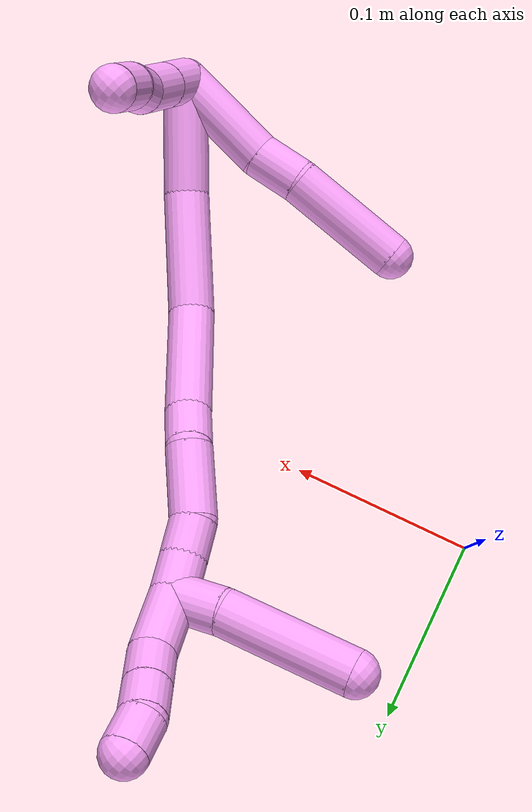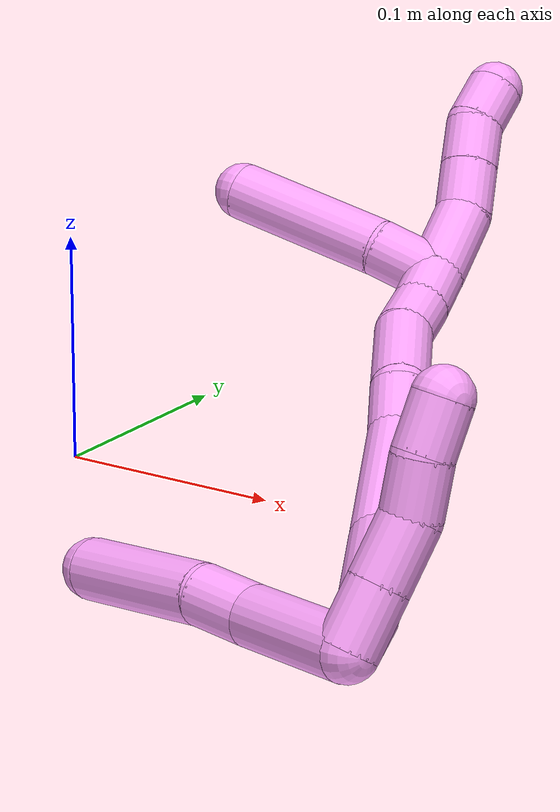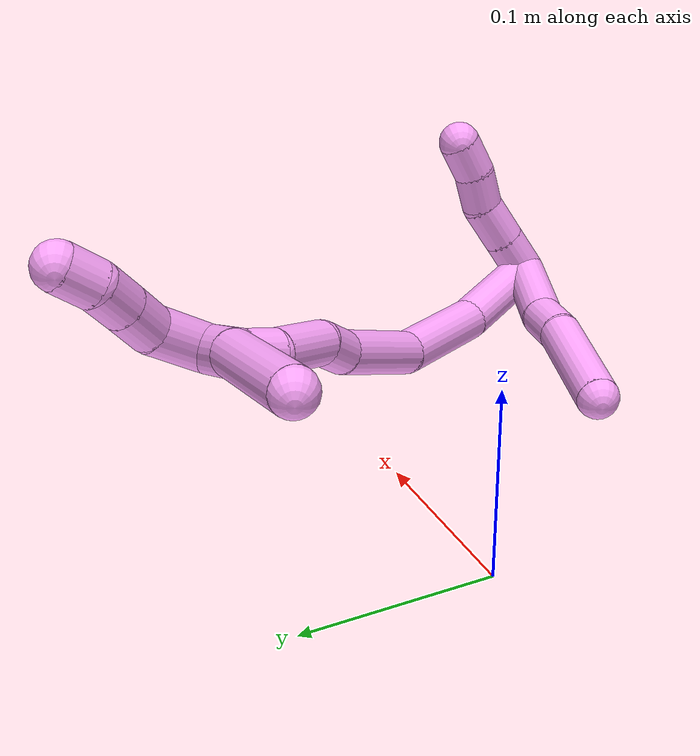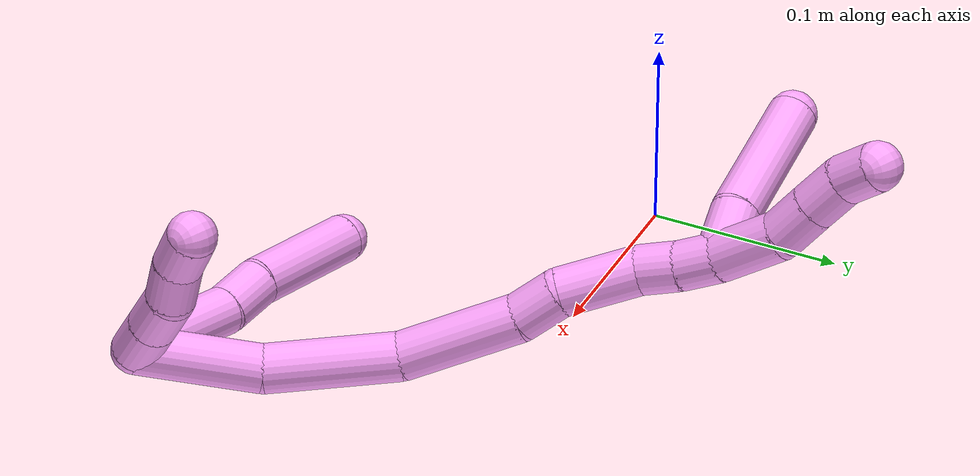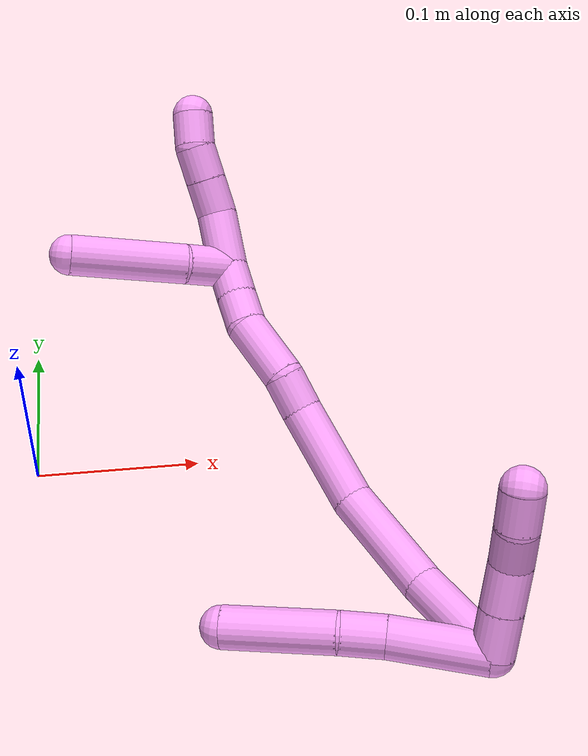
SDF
<sdf version="1.7">
 <world name="default">
  <model name="4">
   <static>0</static>
   <link name="4">
    <collision name="collision-cylinder-e_1_2_8">
     <pose>6e-06 -0.000128 0.029053 0.004414 0.000219 -0</pose>
     <geometry><cylinder><radius>0.0125</radius><length>0.058106</length></cylinder></geometry>
     <surface>
      <friction><ode><mu>1.16</mu><mu2>1.16</mu2><slip1>0</slip1><slip2>0</slip2></ode></friction>
      <contact><ode><kp>1e+06</kp><kd>1</kd><max_vel>0</max_vel><min_depth>0.001</min_depth></ode></contact>
     </surface>
    </collision>
    <visual name="visual-cylinder-e_1_2_8">
     <pose>6e-06 -0.000128 0.029053 0.004414 0.000219 -0</pose>
     <geometry><cylinder><radius>0.0125</radius><length>0.058106</length></cylinder></geometry>
     <material><ambient>1 0.65098 0.996078 1</ambient></material>
    </visual>
    <collision name="collision-cylinder-e_2_8_9">
     <pose>0.001568 0.002372 0.071074 -0.199935 0.116968 -0.011745</pose>
     <geometry><cylinder><radius>0.0125</radius><length>0.026647</length></cylinder></geometry>
     <surface>
      <friction><ode><mu>1.16</mu><mu2>1.16</mu2><slip1>0</slip1><slip2>0</slip2></ode></friction>
      <contact><ode><kp>1e+06</kp><kd>1</kd><max_vel>0</max_vel><min_depth>0.001</min_depth></ode></contact>
     </surface>
    </collision>
    <visual name="visual-cylinder-e_2_8_9">
     <pose>0.001568 0.002372 0.071074 -0.199935 0.116968 -0.011745</pose>
     <geometry><cylinder><radius>0.0125</radius><length>0.026647</length></cylinder></geometry>
     <material><ambient>1 0.65098 0.996078 1</ambient></material>
    </visual>
    <collision name="collision-cylinder-e_3_9_6">
     <pose>0.00688 0.005078 0.11645 -0.002405 0.115428 -0.000139</pose>
     <geometry><cylinder><radius>0.0125</radius><length>0.065247</length></cylinder></geometry>
     <surface>
      <friction><ode><mu>1.16</mu><mu2>1.16</mu2><slip1>0</slip1><slip2>0</slip2></ode></friction>
      <contact><ode><kp>1e+06</kp><kd>1</kd><max_vel>0</max_vel><min_depth>0.001</min_depth></ode></contact>
     </surface>
    </collision>
    <visual name="visual-cylinder-e_3_9_6">
     <pose>0.00688 0.005078 0.11645 -0.002405 0.115428 -0.000139</pose>
     <geometry><cylinder><radius>0.0125</radius><length>0.065247</length></cylinder></geometry>
     <material><ambient>1 0.65098 0.996078 1</ambient></material>
    </visual>
    <collision name="collision-cylinder-e_1_2_10">
     <pose>-0.010874 0.007692 -0.001047 -1.70605 -0.950798 1.06544</pose>
     <geometry><cylinder><radius>0.0125</radius><length>0.026722</length></cylinder></geometry>
     <surface>
      <friction><ode><mu>1.16</mu><mu2>1.16</mu2><slip1>0</slip1><slip2>0</slip2></ode></friction>
      <contact><ode><kp>1e+06</kp><kd>1</kd><max_vel>0</max_vel><min_depth>0.001</min_depth></ode></contact>
     </surface>
    </collision>
    <visual name="visual-cylinder-e_1_2_10">
     <pose>-0.010874 0.007692 -0.001047 -1.70605 -0.950798 1.06544</pose>
     <geometry><cylinder><radius>0.0125</radius><length>0.026722</length></cylinder></geometry>
     <material><ambient>1 0.65098 0.996078 1</ambient></material>
    </visual>
    <collision name="collision-cylinder-e_2_10_11">
     <pose>-0.032842 0.023261 -0.003167 -1.70621 -0.949043 1.06369</pose>
     <geometry><cylinder><radius>0.0125</radius><length>0.027296</length></cylinder></geometry>
     <surface>
      <friction><ode><mu>1.16</mu><mu2>1.16</mu2><slip1>0</slip1><slip2>0</slip2></ode></friction>
      <contact><ode><kp>1e+06</kp><kd>1</kd><max_vel>0</max_vel><min_depth>0.001</min_depth></ode></contact>
     </surface>
    </collision>
    <visual name="visual-cylinder-e_2_10_11">
     <pose>-0.032842 0.023261 -0.003167 -1.70621 -0.949043 1.06369</pose>
     <geometry><cylinder><radius>0.0125</radius><length>0.027296</length></cylinder></geometry>
     <material><ambient>1 0.65098 0.996078 1</ambient></material>
    </visual>
    <collision name="collision-cylinder-e_3_11_12">
     <pose>-0.050897 0.040416 -0.004781 -1.62905 -0.642798 0.67856</pose>
     <geometry><cylinder><radius>0.0125</radius><length>0.023223</length></cylinder></geometry>
     <surface>
      <friction><ode><mu>1.16</mu><mu2>1.16</mu2><slip1>0</slip1><slip2>0</slip2></ode></friction>
      <contact><ode><kp>1e+06</kp><kd>1</kd><max_vel>0</max_vel><min_depth>0.001</min_depth></ode></contact>
     </surface>
    </collision>
    <visual name="visual-cylinder-e_3_11_12">
     <pose>-0.050897 0.040416 -0.004781 -1.62905 -0.642798 0.67856</pose>
     <geometry><cylinder><radius>0.0125</radius><length>0.023223</length></cylinder></geometry>
     <material><ambient>1 0.65098 0.996078 1</ambient></material>
    </visual>
    <collision name="collision-cylinder-e_4_12_5">
     <pose>-0.066345 0.057265 -0.005697 -1.62019 -0.841875 0.879333</pose>
     <geometry><cylinder><radius>0.0125</radius><length>0.022759</length></cylinder></geometry>
     <surface>
      <friction><ode><mu>1.16</mu><mu2>1.16</mu2><slip1>0</slip1><slip2>0</slip2></ode></friction>
      <contact><ode><kp>1e+06</kp><kd>1</kd><max_vel>0</max_vel><min_depth>0.001</min_depth></ode></contact>
     </surface>
    </collision>
    <visual name="visual-cylinder-e_4_12_5">
     <pose>-0.066345 0.057265 -0.005697 -1.62019 -0.841875 0.879333</pose>
     <geometry><cylinder><radius>0.0125</radius><length>0.022759</length></cylinder></geometry>
     <material><ambient>1 0.65098 0.996078 1</ambient></material>
    </visual>
    <collision name="collision-cylinder-e_1_2_13">
     <pose>-0.018598 -0.011795 0.022392 0.484819 -0.633726 -0.161813</pose>
     <geometry><cylinder><radius>0.0125</radius><length>0.062814</length></cylinder></geometry>
     <surface>
      <friction><ode><mu>1.16</mu><mu2>1.16</mu2><slip1>0</slip1><slip2>0</slip2></ode></friction>
      <contact><ode><kp>1e+06</kp><kd>1</kd><max_vel>0</max_vel><min_depth>0.001</min_depth></ode></contact>
     </surface>
    </collision>
    <visual name="visual-cylinder-e_1_2_13">
     <pose>-0.018598 -0.011795 0.022392 0.484819 -0.633726 -0.161813</pose>
     <geometry><cylinder><radius>0.0125</radius><length>0.062814</length></cylinder></geometry>
     <material><ambient>1 0.65098 0.996078 1</ambient></material>
    </visual>
    <collision name="collision-cylinder-e_2_13_14">
     <pose>-0.060103 -0.027727 0.069712 0.164449 -0.736433 -0.063569</pose>
     <geometry><cylinder><radius>0.0125</radius><length>0.068213</length></cylinder></geometry>
     <surface>
      <friction><ode><mu>1.16</mu><mu2>1.16</mu2><slip1>0</slip1><slip2>0</slip2></ode></friction>
      <contact><ode><kp>1e+06</kp><kd>1</kd><max_vel>0</max_vel><min_depth>0.001</min_depth></ode></contact>
     </surface>
    </collision>
    <visual name="visual-cylinder-e_2_13_14">
     <pose>-0.060103 -0.027727 0.069712 0.164449 -0.736433 -0.063569</pose>
     <geometry><cylinder><radius>0.0125</radius><length>0.068213</length></cylinder></geometry>
     <material><ambient>1 0.65098 0.996078 1</ambient></material>
    </visual>
    <collision name="collision-cylinder-e_3_14_15">
     <pose>-0.107124 -0.027056 0.114043 -0.242845 -0.878609 0.114559</pose>
     <geometry><cylinder><radius>0.0125</radius><length>0.062645</length></cylinder></geometry>
     <surface>
      <friction><ode><mu>1.16</mu><mu2>1.16</mu2><slip1>0</slip1><slip2>0</slip2></ode></friction>
      <contact><ode><kp>1e+06</kp><kd>1</kd><max_vel>0</max_vel><min_depth>0.001</min_depth></ode></contact>
     </surface>
    </collision>
    <visual name="visual-cylinder-e_3_14_15">
     <pose>-0.107124 -0.027056 0.114043 -0.242845 -0.878609 0.114559</pose>
     <geometry><cylinder><radius>0.0125</radius><length>0.062645</length></cylinder></geometry>
     <material><ambient>1 0.65098 0.996078 1</ambient></material>
    </visual>
    <collision name="collision-cylinder-e_4_15_16">
     <pose>-0.139963 -0.017609 0.140122 -0.607536 -0.820718 0.271083</pose>
     <geometry><cylinder><radius>0.0125</radius><length>0.023849</length></cylinder></geometry>
     <surface>
      <friction><ode><mu>1.16</mu><mu2>1.16</mu2><slip1>0</slip1><slip2>0</slip2></ode></friction>
      <contact><ode><kp>1e+06</kp><kd>1</kd><max_vel>0</max_vel><min_depth>0.001</min_depth></ode></contact>
     </surface>
    </collision>
    <visual name="visual-cylinder-e_4_15_16">
     <pose>-0.139963 -0.017609 0.140122 -0.607536 -0.820718 0.271083</pose>
     <geometry><cylinder><radius>0.0125</radius><length>0.023849</length></cylinder></geometry>
     <material><ambient>1 0.65098 0.996078 1</ambient></material>
    </visual>
    <collision name="collision-cylinder-e_5_16_17">
     <pose>-0.16296 -0.011364 0.161099 -0.111745 -0.781201 0.046052</pose>
     <geometry><cylinder><radius>0.0125</radius><length>0.04054</length></cylinder></geometry>
     <surface>
      <friction><ode><mu>1.16</mu><mu2>1.16</mu2><slip1>0</slip1><slip2>0</slip2></ode></friction>
      <contact><ode><kp>1e+06</kp><kd>1</kd><max_vel>0</max_vel><min_depth>0.001</min_depth></ode></contact>
     </surface>
    </collision>
    <visual name="visual-cylinder-e_5_16_17">
     <pose>-0.16296 -0.011364 0.161099 -0.111745 -0.781201 0.046052</pose>
     <geometry><cylinder><radius>0.0125</radius><length>0.04054</length></cylinder></geometry>
     <material><ambient>1 0.65098 0.996078 1</ambient></material>
    </visual>
    <collision name="collision-cylinder-e_6_17_18">
     <pose>-0.186448 -0.009911 0.180403 0.030454 -1.0735 -0.018122</pose>
     <geometry><cylinder><radius>0.0125</radius><length>0.020972</length></cylinder></geometry>
     <surface>
      <friction><ode><mu>1.16</mu><mu2>1.16</mu2><slip1>0</slip1><slip2>0</slip2></ode></friction>
      <contact><ode><kp>1e+06</kp><kd>1</kd><max_vel>0</max_vel><min_depth>0.001</min_depth></ode></contact>
     </surface>
    </collision>
    <visual name="visual-cylinder-e_6_17_18">
     <pose>-0.186448 -0.009911 0.180403 0.030454 -1.0735 -0.018122</pose>
     <geometry><cylinder><radius>0.0125</radius><length>0.020972</length></cylinder></geometry>
     <material><ambient>1 0.65098 0.996078 1</ambient></material>
    </visual>
    <collision name="collision-cylinder-e_7_18_1">
     <pose>-0.204967 -0.008909 0.190097 -0.241095 -1.09155 0.146867</pose>
     <geometry><cylinder><radius>0.0125</radius><length>0.020966</length></cylinder></geometry>
     <surface>
      <friction><ode><mu>1.16</mu><mu2>1.16</mu2><slip1>0</slip1><slip2>0</slip2></ode></friction>
      <contact><ode><kp>1e+06</kp><kd>1</kd><max_vel>0</max_vel><min_depth>0.001</min_depth></ode></contact>
     </surface>
    </collision>
    <visual name="visual-cylinder-e_7_18_1">
     <pose>-0.204967 -0.008909 0.190097 -0.241095 -1.09155 0.146867</pose>
     <geometry><cylinder><radius>0.0125</radius><length>0.020966</length></cylinder></geometry>
     <material><ambient>1 0.65098 0.996078 1</ambient></material>
    </visual>
    <collision name="collision-cylinder-e_1_1_19">
     <pose>-0.230274 -0.00334 0.200866 -0.628475 -1.13208 0.407288</pose>
     <geometry><cylinder><radius>0.0125</radius><length>0.035358</length></cylinder></geometry>
     <surface>
      <friction><ode><mu>1.16</mu><mu2>1.16</mu2><slip1>0</slip1><slip2>0</slip2></ode></friction>
      <contact><ode><kp>1e+06</kp><kd>1</kd><max_vel>0</max_vel><min_depth>0.001</min_depth></ode></contact>
     </surface>
    </collision>
    <visual name="visual-cylinder-e_1_1_19">
     <pose>-0.230274 -0.00334 0.200866 -0.628475 -1.13208 0.407288</pose>
     <geometry><cylinder><radius>0.0125</radius><length>0.035358</length></cylinder></geometry>
     <material><ambient>1 0.65098 0.996078 1</ambient></material>
    </visual>
    <collision name="collision-cylinder-e_2_19_20">
     <pose>-0.254793 0.007275 0.211179 -0.971218 -0.848006 0.467726</pose>
     <geometry><cylinder><radius>0.0125</radius><length>0.022706</length></cylinder></geometry>
     <surface>
      <friction><ode><mu>1.16</mu><mu2>1.16</mu2><slip1>0</slip1><slip2>0</slip2></ode></friction>
      <contact><ode><kp>1e+06</kp><kd>1</kd><max_vel>0</max_vel><min_depth>0.001</min_depth></ode></contact>
     </surface>
    </collision>
    <visual name="visual-cylinder-e_2_19_20">
     <pose>-0.254793 0.007275 0.211179 -0.971218 -0.848006 0.467726</pose>
     <geometry><cylinder><radius>0.0125</radius><length>0.022706</length></cylinder></geometry>
     <material><ambient>1 0.65098 0.996078 1</ambient></material>
    </visual>
    <collision name="collision-cylinder-e_3_20_21">
     <pose>-0.271376 0.019161 0.219437 -0.955268 -0.858785 0.465423</pose>
     <geometry><cylinder><radius>0.0125</radius><length>0.021317</length></cylinder></geometry>
     <surface>
      <friction><ode><mu>1.16</mu><mu2>1.16</mu2><slip1>0</slip1><slip2>0</slip2></ode></friction>
      <contact><ode><kp>1e+06</kp><kd>1</kd><max_vel>0</max_vel><min_depth>0.001</min_depth></ode></contact>
     </surface>
    </collision>
    <visual name="visual-cylinder-e_3_20_21">
     <pose>-0.271376 0.019161 0.219437 -0.955268 -0.858785 0.465423</pose>
     <geometry><cylinder><radius>0.0125</radius><length>0.021317</length></cylinder></geometry>
     <material><ambient>1 0.65098 0.996078 1</ambient></material>
    </visual>
    <collision name="collision-cylinder-e_4_21_4">
     <pose>-0.289053 0.027844 0.225691 -0.930569 -1.19981 0.661566</pose>
     <geometry><cylinder><radius>0.0125</radius><length>0.020619</length></cylinder></geometry>
     <surface>
      <friction><ode><mu>1.16</mu><mu2>1.16</mu2><slip1>0</slip1><slip2>0</slip2></ode></friction>
      <contact><ode><kp>1e+06</kp><kd>1</kd><max_vel>0</max_vel><min_depth>0.001</min_depth></ode></contact>
     </surface>
    </collision>
    <visual name="visual-cylinder-e_4_21_4">
     <pose>-0.289053 0.027844 0.225691 -0.930569 -1.19981 0.661566</pose>
     <geometry><cylinder><radius>0.0125</radius><length>0.020619</length></cylinder></geometry>
     <material><ambient>1 0.65098 0.996078 1</ambient></material>
    </visual>
    <collision name="collision-cylinder-e_1_1_22">
     <pose>-0.210583 -0.000386 0.20617 -0.574696 0.265497 -0.078885</pose>
     <geometry><cylinder><radius>0.0125</radius><length>0.028097</length></cylinder></geometry>
     <surface>
      <friction><ode><mu>1.16</mu><mu2>1.16</mu2><slip1>0</slip1><slip2>0</slip2></ode></friction>
      <contact><ode><kp>1e+06</kp><kd>1</kd><max_vel>0</max_vel><min_depth>0.001</min_depth></ode></contact>
     </surface>
    </collision>
    <visual name="visual-cylinder-e_1_1_22">
     <pose>-0.210583 -0.000386 0.20617 -0.574696 0.265497 -0.078885</pose>
     <geometry><cylinder><radius>0.0125</radius><length>0.028097</length></cylinder></geometry>
     <material><ambient>1 0.65098 0.996078 1</ambient></material>
    </visual>
    <collision name="collision-cylinder-e_2_22_3">
     <pose>-0.199408 0.020837 0.249867 -0.404961 0.209838 -0.04323</pose>
     <geometry><cylinder><radius>0.0125</radius><length>0.071903</length></cylinder></geometry>
     <surface>
      <friction><ode><mu>1.16</mu><mu2>1.16</mu2><slip1>0</slip1><slip2>0</slip2></ode></friction>
      <contact><ode><kp>1e+06</kp><kd>1</kd><max_vel>0</max_vel><min_depth>0.001</min_depth></ode></contact>
     </surface>
    </collision>
    <visual name="visual-cylinder-e_2_22_3">
     <pose>-0.199408 0.020837 0.249867 -0.404961 0.209838 -0.04323</pose>
     <geometry><cylinder><radius>0.0125</radius><length>0.071903</length></cylinder></geometry>
     <material><ambient>1 0.65098 0.996078 1</ambient></material>
    </visual>
    <collision name="collision-sphere-3">
     <pose>-0.191919 0.03469 0.282186 0 -0 0</pose>
     <geometry><sphere><radius>0.0125</radius></sphere></geometry>
     <surface>
      <friction><ode><mu>1.16</mu><mu2>1.16</mu2><slip1>0</slip1><slip2>0</slip2></ode></friction>
      <contact><ode><kp>1e+06</kp><kd>1</kd><max_vel>0</max_vel><min_depth>0.001</min_depth></ode></contact>
     </surface>
    </collision>
    <visual name="visual-sphere-3">
     <pose>-0.191919 0.03469 0.282186 0 -0 0</pose>
     <geometry><sphere><radius>0.0125</radius></sphere></geometry>
     <material><ambient>1 0.65098 0.996078 1</ambient></material>
    </visual>
    <collision name="collision-sphere-22">
     <pose>-0.206897 0.006983 0.217549 0 -0 0</pose>
     <geometry><sphere><radius>0.0125</radius></sphere></geometry>
     <surface>
      <friction><ode><mu>1.16</mu><mu2>1.16</mu2><slip1>0</slip1><slip2>0</slip2></ode></friction>
      <contact><ode><kp>1e+06</kp><kd>1</kd><max_vel>0</max_vel><min_depth>0.001</min_depth></ode></contact>
     </surface>
    </collision>
    <visual name="visual-sphere-22">
     <pose>-0.206897 0.006983 0.217549 0 -0 0</pose>
     <geometry><sphere><radius>0.0125</radius></sphere></geometry>
     <material><ambient>1 0.65098 0.996078 1</ambient></material>
    </visual>
    <collision name="collision-sphere-4">
     <pose>-0.298661 0.030841 0.227923 0 -0 0</pose>
     <geometry><sphere><radius>0.0125</radius></sphere></geometry>
     <surface>
      <friction><ode><mu>1.16</mu><mu2>1.16</mu2><slip1>0</slip1><slip2>0</slip2></ode></friction>
      <contact><ode><kp>1e+06</kp><kd>1</kd><max_vel>0</max_vel><min_depth>0.001</min_depth></ode></contact>
     </surface>
    </collision>
    <visual name="visual-sphere-4">
     <pose>-0.298661 0.030841 0.227923 0 -0 0</pose>
     <geometry><sphere><radius>0.0125</radius></sphere></geometry>
     <material><ambient>1 0.65098 0.996078 1</ambient></material>
    </visual>
    <collision name="collision-sphere-21">
     <pose>-0.279445 0.024846 0.223458 0 -0 0</pose>
     <geometry><sphere><radius>0.0125</radius></sphere></geometry>
     <surface>
      <friction><ode><mu>1.16</mu><mu2>1.16</mu2><slip1>0</slip1><slip2>0</slip2></ode></friction>
      <contact><ode><kp>1e+06</kp><kd>1</kd><max_vel>0</max_vel><min_depth>0.001</min_depth></ode></contact>
     </surface>
    </collision>
    <visual name="visual-sphere-21">
     <pose>-0.279445 0.024846 0.223458 0 -0 0</pose>
     <geometry><sphere><radius>0.0125</radius></sphere></geometry>
     <material><ambient>1 0.65098 0.996078 1</ambient></material>
    </visual>
    <collision name="collision-sphere-20">
     <pose>-0.263307 0.013475 0.215416 0 -0 0</pose>
     <geometry><sphere><radius>0.0125</radius></sphere></geometry>
     <surface>
      <friction><ode><mu>1.16</mu><mu2>1.16</mu2><slip1>0</slip1><slip2>0</slip2></ode></friction>
      <contact><ode><kp>1e+06</kp><kd>1</kd><max_vel>0</max_vel><min_depth>0.001</min_depth></ode></contact>
     </surface>
    </collision>
    <visual name="visual-sphere-20">
     <pose>-0.263307 0.013475 0.215416 0 -0 0</pose>
     <geometry><sphere><radius>0.0125</radius></sphere></geometry>
     <material><ambient>1 0.65098 0.996078 1</ambient></material>
    </visual>
    <collision name="collision-sphere-11">
     <pose>-0.043936 0.031138 -0.00424 0 -0 0</pose>
     <geometry><sphere><radius>0.0125</radius></sphere></geometry>
     <surface>
      <friction><ode><mu>1.16</mu><mu2>1.16</mu2><slip1>0</slip1><slip2>0</slip2></ode></friction>
      <contact><ode><kp>1e+06</kp><kd>1</kd><max_vel>0</max_vel><min_depth>0.001</min_depth></ode></contact>
     </surface>
    </collision>
    <visual name="visual-sphere-11">
     <pose>-0.043936 0.031138 -0.00424 0 -0 0</pose>
     <geometry><sphere><radius>0.0125</radius></sphere></geometry>
     <material><ambient>1 0.65098 0.996078 1</ambient></material>
    </visual>
    <collision name="collision-sphere-10">
     <pose>-0.021748 0.015385 -0.002094 0 -0 0</pose>
     <geometry><sphere><radius>0.0125</radius></sphere></geometry>
     <surface>
      <friction><ode><mu>1.16</mu><mu2>1.16</mu2><slip1>0</slip1><slip2>0</slip2></ode></friction>
      <contact><ode><kp>1e+06</kp><kd>1</kd><max_vel>0</max_vel><min_depth>0.001</min_depth></ode></contact>
     </surface>
    </collision>
    <visual name="visual-sphere-10">
     <pose>-0.021748 0.015385 -0.002094 0 -0 0</pose>
     <geometry><sphere><radius>0.0125</radius></sphere></geometry>
     <material><ambient>1 0.65098 0.996078 1</ambient></material>
    </visual>
    <collision name="collision-sphere-6">
     <pose>0.010637 0.005155 0.148856 0 -0 0</pose>
     <geometry><sphere><radius>0.0125</radius></sphere></geometry>
     <surface>
      <friction><ode><mu>1.16</mu><mu2>1.16</mu2><slip1>0</slip1><slip2>0</slip2></ode></friction>
      <contact><ode><kp>1e+06</kp><kd>1</kd><max_vel>0</max_vel><min_depth>0.001</min_depth></ode></contact>
     </surface>
    </collision>
    <visual name="visual-sphere-6">
     <pose>0.010637 0.005155 0.148856 0 -0 0</pose>
     <geometry><sphere><radius>0.0125</radius></sphere></geometry>
     <material><ambient>1 0.65098 0.996078 1</ambient></material>
    </visual>
    <collision name="collision-sphere-9">
     <pose>0.003122 0.005 0.084043 0 -0 0</pose>
     <geometry><sphere><radius>0.0125</radius></sphere></geometry>
     <surface>
      <friction><ode><mu>1.16</mu><mu2>1.16</mu2><slip1>0</slip1><slip2>0</slip2></ode></friction>
      <contact><ode><kp>1e+06</kp><kd>1</kd><max_vel>0</max_vel><min_depth>0.001</min_depth></ode></contact>
     </surface>
    </collision>
    <visual name="visual-sphere-9">
     <pose>0.003122 0.005 0.084043 0 -0 0</pose>
     <geometry><sphere><radius>0.0125</radius></sphere></geometry>
     <material><ambient>1 0.65098 0.996078 1</ambient></material>
    </visual>
    <collision name="collision-sphere-2">
     <geometry><sphere><radius>0.0125</radius></sphere></geometry>
     <surface>
      <friction><ode><mu>1.16</mu><mu2>1.16</mu2><slip1>0</slip1><slip2>0</slip2></ode></friction>
      <contact><ode><kp>1e+06</kp><kd>1</kd><max_vel>0</max_vel><min_depth>0.001</min_depth></ode></contact>
     </surface>
    </collision>
    <visual name="visual-sphere-2">
     <geometry><sphere><radius>0.0125</radius></sphere></geometry>
     <material><ambient>1 0.65098 0.996078 1</ambient></material>
    </visual>
    <collision name="collision-sphere-19">
     <pose>-0.246279 0.001075 0.206941 0 -0 0</pose>
     <geometry><sphere><radius>0.0125</radius></sphere></geometry>
     <surface>
      <friction><ode><mu>1.16</mu><mu2>1.16</mu2><slip1>0</slip1><slip2>0</slip2></ode></friction>
      <contact><ode><kp>1e+06</kp><kd>1</kd><max_vel>0</max_vel><min_depth>0.001</min_depth></ode></contact>
     </surface>
    </collision>
    <visual name="visual-sphere-19">
     <pose>-0.246279 0.001075 0.206941 0 -0 0</pose>
     <geometry><sphere><radius>0.0125</radius></sphere></geometry>
     <material><ambient>1 0.65098 0.996078 1</ambient></material>
    </visual>
    <collision name="collision-sphere-8">
     <pose>1.3e-05 -0.000256 0.058106 0 -0 0</pose>
     <geometry><sphere><radius>0.0125</radius></sphere></geometry>
     <surface>
      <friction><ode><mu>1.16</mu><mu2>1.16</mu2><slip1>0</slip1><slip2>0</slip2></ode></friction>
      <contact><ode><kp>1e+06</kp><kd>1</kd><max_vel>0</max_vel><min_depth>0.001</min_depth></ode></contact>
     </surface>
    </collision>
    <visual name="visual-sphere-8">
     <pose>1.3e-05 -0.000256 0.058106 0 -0 0</pose>
     <geometry><sphere><radius>0.0125</radius></sphere></geometry>
     <material><ambient>1 0.65098 0.996078 1</ambient></material>
    </visual>
    <collision name="collision-sphere-12">
     <pose>-0.057857 0.049694 -0.005322 0 -0 0</pose>
     <geometry><sphere><radius>0.0125</radius></sphere></geometry>
     <surface>
      <friction><ode><mu>1.16</mu><mu2>1.16</mu2><slip1>0</slip1><slip2>0</slip2></ode></friction>
      <contact><ode><kp>1e+06</kp><kd>1</kd><max_vel>0</max_vel><min_depth>0.001</min_depth></ode></contact>
     </surface>
    </collision>
    <visual name="visual-sphere-12">
     <pose>-0.057857 0.049694 -0.005322 0 -0 0</pose>
     <geometry><sphere><radius>0.0125</radius></sphere></geometry>
     <material><ambient>1 0.65098 0.996078 1</ambient></material>
    </visual>
    <collision name="collision-sphere-5">
     <pose>-0.074833 0.064835 -0.006071 0 -0 0</pose>
     <geometry><sphere><radius>0.0125</radius></sphere></geometry>
     <surface>
      <friction><ode><mu>1.16</mu><mu2>1.16</mu2><slip1>0</slip1><slip2>0</slip2></ode></friction>
      <contact><ode><kp>1e+06</kp><kd>1</kd><max_vel>0</max_vel><min_depth>0.001</min_depth></ode></contact>
     </surface>
    </collision>
    <visual name="visual-sphere-5">
     <pose>-0.074833 0.064835 -0.006071 0 -0 0</pose>
     <geometry><sphere><radius>0.0125</radius></sphere></geometry>
     <material><ambient>1 0.65098 0.996078 1</ambient></material>
    </visual>
    <collision name="collision-sphere-13">
     <pose>-0.037195 -0.02359 0.044784 0 -0 0</pose>
     <geometry><sphere><radius>0.0125</radius></sphere></geometry>
     <surface>
      <friction><ode><mu>1.16</mu><mu2>1.16</mu2><slip1>0</slip1><slip2>0</slip2></ode></friction>
      <contact><ode><kp>1e+06</kp><kd>1</kd><max_vel>0</max_vel><min_depth>0.001</min_depth></ode></contact>
     </surface>
    </collision>
    <visual name="visual-sphere-13">
     <pose>-0.037195 -0.02359 0.044784 0 -0 0</pose>
     <geometry><sphere><radius>0.0125</radius></sphere></geometry>
     <material><ambient>1 0.65098 0.996078 1</ambient></material>
    </visual>
    <collision name="collision-sphere-14">
     <pose>-0.083011 -0.031863 0.094639 0 -0 0</pose>
     <geometry><sphere><radius>0.0125</radius></sphere></geometry>
     <surface>
      <friction><ode><mu>1.16</mu><mu2>1.16</mu2><slip1>0</slip1><slip2>0</slip2></ode></friction>
      <contact><ode><kp>1e+06</kp><kd>1</kd><max_vel>0</max_vel><min_depth>0.001</min_depth></ode></contact>
     </surface>
    </collision>
    <visual name="visual-sphere-14">
     <pose>-0.083011 -0.031863 0.094639 0 -0 0</pose>
     <geometry><sphere><radius>0.0125</radius></sphere></geometry>
     <material><ambient>1 0.65098 0.996078 1</ambient></material>
    </visual>
    <collision name="collision-sphere-15">
     <pose>-0.131238 -0.022249 0.133448 0 -0 0</pose>
     <geometry><sphere><radius>0.0125</radius></sphere></geometry>
     <surface>
      <friction><ode><mu>1.16</mu><mu2>1.16</mu2><slip1>0</slip1><slip2>0</slip2></ode></friction>
      <contact><ode><kp>1e+06</kp><kd>1</kd><max_vel>0</max_vel><min_depth>0.001</min_depth></ode></contact>
     </surface>
    </collision>
    <visual name="visual-sphere-15">
     <pose>-0.131238 -0.022249 0.133448 0 -0 0</pose>
     <geometry><sphere><radius>0.0125</radius></sphere></geometry>
     <material><ambient>1 0.65098 0.996078 1</ambient></material>
    </visual>
    <collision name="collision-sphere-16">
     <pose>-0.148687 -0.012969 0.146796 0 -0 0</pose>
     <geometry><sphere><radius>0.0125</radius></sphere></geometry>
     <surface>
      <friction><ode><mu>1.16</mu><mu2>1.16</mu2><slip1>0</slip1><slip2>0</slip2></ode></friction>
      <contact><ode><kp>1e+06</kp><kd>1</kd><max_vel>0</max_vel><min_depth>0.001</min_depth></ode></contact>
     </surface>
    </collision>
    <visual name="visual-sphere-16">
     <pose>-0.148687 -0.012969 0.146796 0 -0 0</pose>
     <geometry><sphere><radius>0.0125</radius></sphere></geometry>
     <material><ambient>1 0.65098 0.996078 1</ambient></material>
    </visual>
    <collision name="collision-sphere-17">
     <pose>-0.177232 -0.009759 0.175403 0 -0 0</pose>
     <geometry><sphere><radius>0.0125</radius></sphere></geometry>
     <surface>
      <friction><ode><mu>1.16</mu><mu2>1.16</mu2><slip1>0</slip1><slip2>0</slip2></ode></friction>
      <contact><ode><kp>1e+06</kp><kd>1</kd><max_vel>0</max_vel><min_depth>0.001</min_depth></ode></contact>
     </surface>
    </collision>
    <visual name="visual-sphere-17">
     <pose>-0.177232 -0.009759 0.175403 0 -0 0</pose>
     <geometry><sphere><radius>0.0125</radius></sphere></geometry>
     <material><ambient>1 0.65098 0.996078 1</ambient></material>
    </visual>
    <collision name="collision-sphere-18">
     <pose>-0.195665 -0.010063 0.185403 0 -0 0</pose>
     <geometry><sphere><radius>0.0125</radius></sphere></geometry>
     <surface>
      <friction><ode><mu>1.16</mu><mu2>1.16</mu2><slip1>0</slip1><slip2>0</slip2></ode></friction>
      <contact><ode><kp>1e+06</kp><kd>1</kd><max_vel>0</max_vel><min_depth>0.001</min_depth></ode></contact>
     </surface>
    </collision>
    <visual name="visual-sphere-18">
     <pose>-0.195665 -0.010063 0.185403 0 -0 0</pose>
     <geometry><sphere><radius>0.0125</radius></sphere></geometry>
     <material><ambient>1 0.65098 0.996078 1</ambient></material>
    </visual>
    <collision name="collision-sphere-1">
     <pose>-0.214269 -0.007755 0.194791 0 -0 0</pose>
     <geometry><sphere><radius>0.0125</radius></sphere></geometry>
     <surface>
      <friction><ode><mu>1.16</mu><mu2>1.16</mu2><slip1>0</slip1><slip2>0</slip2></ode></friction>
      <contact><ode><kp>1e+06</kp><kd>1</kd><max_vel>0</max_vel><min_depth>0.001</min_depth></ode></contact>
     </surface>
    </collision>
    <visual name="visual-sphere-1">
     <pose>-0.214269 -0.007755 0.194791 0 -0 0</pose>
     <geometry><sphere><radius>0.0125</radius></sphere></geometry>
     <material><ambient>1 0.65098 0.996078 1</ambient></material>
    </visual>
    <inertial>
     <pose>-0.105928 0.000512 0.11568 0 -0 0</pose>
     <mass>0.75</mass>
     <inertia><ixx>0.00013</ixx><ixy>0</ixy><ixz>0</ixz><iyy>0.000194</iyy><iyz>0</iyz><izz>8.3e-05</izz></inertia>
    </inertial>
   </link>
   <pose>0.24772 -0.166887 0.023195 1.65815 0.386855 -1.88345</pose>
  </model>
 </world>
</sdf>
